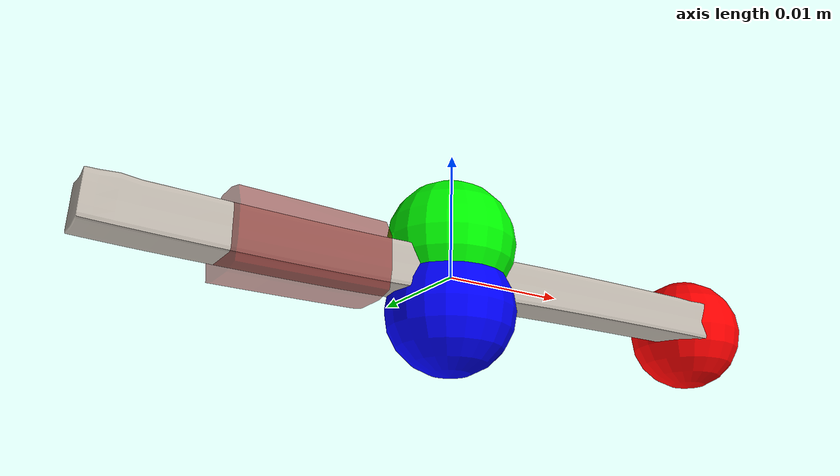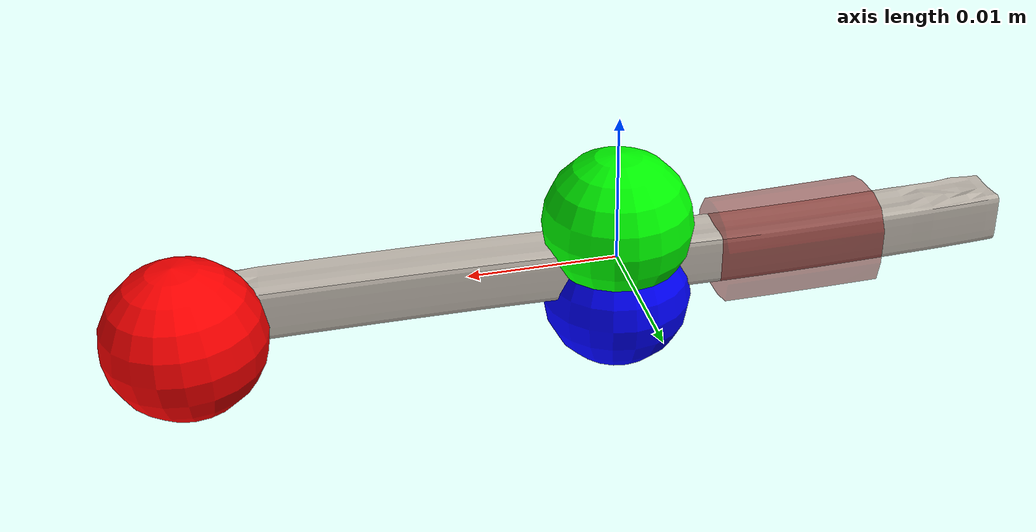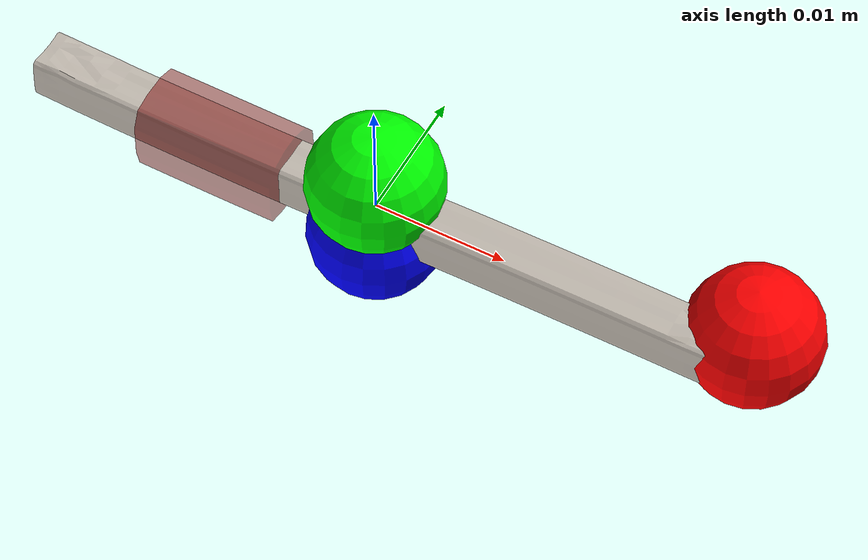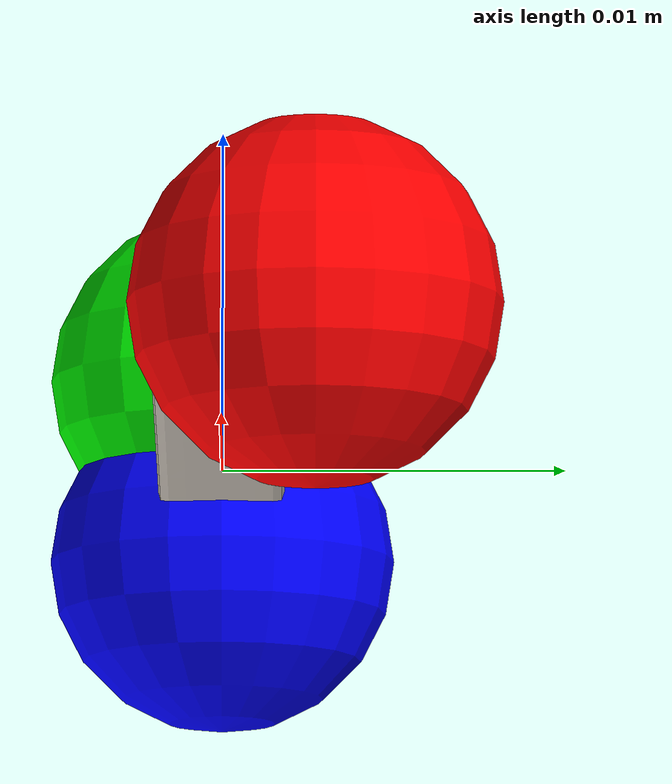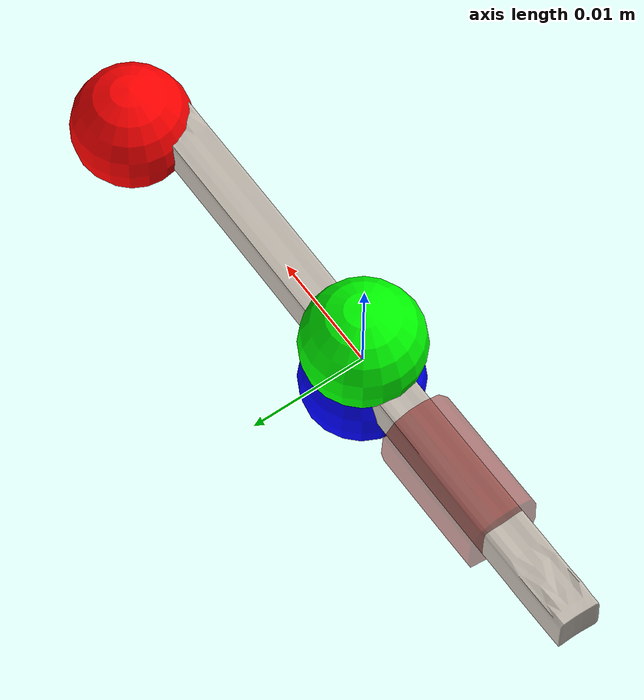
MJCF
<?xml version='1.0' encoding='UTF-8'?>
<mujoco model="model">
  <compiler angle="radian"/>
  <asset>
    <mesh file="visual/CreamCheese002.obj" name="CreamCheese002_vis"/>
    <texture file="visual/T_BC001.png" name="CreamCheese002_material" type="2d"/>
    <material name="CreamCheese002_material" rgba="1 1 1 1.0" texture="CreamCheese002_material" shininess="0.5" specular="0.103448502657381"/>
    <mesh file="collision/CreamCheese002001.obj" name="CreamCheese002001_mesh"/>
  </asset>
  <default>
    <default class="visual">
      <geom conaffinity="0" contype="0" group="1" type="mesh"/>
    </default>
    <default class="collision">
      <geom group="0" rgba="0.5 0 0 0.5"/>
    </default>
    <default class="spawn">
      <geom group="0" rgba="1 1 1 0.5" contype="0" conaffinity="0"/>
      <site group="0" rgba="1 1 1 0.5"/>
    </default>
    <default class="region">
      <geom group="1" conaffinity="0" contype="0" rgba="0 1 0 0"/>
    </default>
  </default>
  <worldbody>
    <body>
      <body name="object">
        <geom mesh="CreamCheese002_vis" type="mesh" solimp="0.998 0.998 0.001" solref="0.001 1" density="100" friction="0.95 0.3 0.1" class="visual" material="CreamCheese002_material"/>
        <geom mesh="CreamCheese002001_mesh" type="mesh" class="collision"/>
      </body>
      <site rgba="1 0 0 1" size="0.005" pos="0.027688500000000005 0.0025510900000000006 -3.788999999999988e-05" name="horizontal_radius_site"/>
      <site rgba="0 1 0 1" size="0.005" pos="-4.249999999997124e-06 -6.474999999999764e-06 0.00262703" name="top_site"/>
      <site rgba="0 0 1 1" size="0.005" pos="-4.249999999997124e-06 -6.474999999999764e-06 -0.00270281" name="bottom_site"/>
    </body>
  </worldbody>
  <actuator/>
</mujoco>
